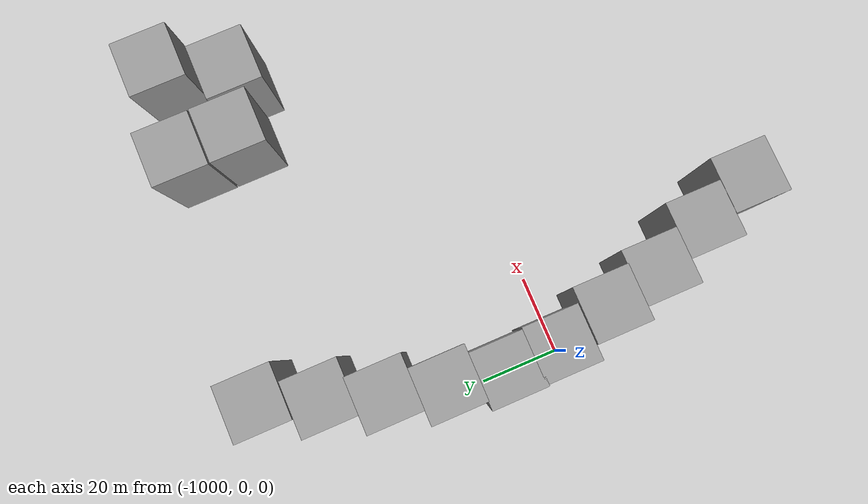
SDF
<sdf version="1.7">
 <world name="usv_world">
  <model name="box_obstacle_clone_4_clone_12_clone_1">
   <link name="link">
    <inertial>
     <mass>1</mass>
     <inertia>
      <ixx>0.166667</ixx>
      <ixy>0</ixy>
      <ixz>0</ixz>
      <iyy>0.166667</iyy>
      <iyz>0</iyz>
      <izz>0.166667</izz>
     </inertia>
    </inertial>
    <gravity>0</gravity>
    <visual name="visual">
     <geometry><box><size>15 15 30</size></box></geometry>
     <material>
      <script><name>Gazebo/Grey</name><uri>file://media/materials/scripts/gazebo.material</uri></script>
      <shader type="pixel"><normal_map>__default__</normal_map></shader>
      <ambient>0.3 0.3 0.3 1</ambient>
      <diffuse>0.7 0.7 0.7 1</diffuse>
      <specular>0.01 0.01 0.01 1</specular>
      <emissive>0 0 0 1</emissive>
     </material>
    </visual>
    <collision name="collision">
     <geometry><box><size>15 15 30</size></box></geometry>
     <surface>
      <friction>
       <ode><mu>1</mu><mu2>1</mu2><fdir1>0 0 0</fdir1><slip1>0</slip1><slip2>0</slip2></ode>
       <torsional>
        <coefficient>1</coefficient>
        <patch_radius>0</patch_radius>
        <surface_radius>0</surface_radius>
        <use_patch_radius>1</use_patch_radius>
        <ode><slip>0</slip></ode>
       </torsional>
      </friction>
      <bounce><restitution_coefficient>0</restitution_coefficient><threshold>1e+06</threshold></bounce>
      <contact>
       <collide_without_contact>0</collide_without_contact>
       <collide_without_contact_bitmask>1</collide_without_contact_bitmask>
       <collide_bitmask>1</collide_bitmask>
       <ode>
        <soft_cfm>0</soft_cfm>
        <soft_erp>0.2</soft_erp>
        <kp>1e+13</kp>
        <kd>1</kd>
        <max_vel>0.01</max_vel>
        <min_depth>0</min_depth>
       </ode>
       <bullet>
        <split_impulse>1</split_impulse>
        <split_impulse_penetration_threshold>-0.01</split_impulse_penetration_threshold>
        <soft_cfm>0</soft_cfm>
        <soft_erp>0.2</soft_erp>
        <kp>1e+13</kp>
        <kd>1</kd>
       </bullet>
      </contact>
     </surface>
    </collision>
   </link>
   <static>0</static>
   <pose>-978.987 -60.6566 0.5 0 -0 0</pose>
  </model>
  <model name="box_obstacle_clone_4_clone_12_clone_2">
   <link name="link">
    <inertial>
     <mass>1</mass>
     <inertia>
      <ixx>0.166667</ixx>
      <ixy>0</ixy>
      <ixz>0</ixz>
      <iyy>0.166667</iyy>
      <iyz>0</iyz>
      <izz>0.166667</izz>
     </inertia>
    </inertial>
    <gravity>0</gravity>
    <visual name="visual">
     <geometry><box><size>15 15 30</size></box></geometry>
     <material>
      <script><name>Gazebo/Grey</name><uri>file://media/materials/scripts/gazebo.material</uri></script>
      <shader type="pixel"><normal_map>__default__</normal_map></shader>
      <ambient>0.3 0.3 0.3 1</ambient>
      <diffuse>0.7 0.7 0.7 1</diffuse>
      <specular>0.01 0.01 0.01 1</specular>
      <emissive>0 0 0 1</emissive>
     </material>
    </visual>
    <collision name="collision">
     <geometry><box><size>15 15 30</size></box></geometry>
     <surface>
      <friction>
       <ode><mu>1</mu><mu2>1</mu2><fdir1>0 0 0</fdir1><slip1>0</slip1><slip2>0</slip2></ode>
       <torsional>
        <coefficient>1</coefficient>
        <patch_radius>0</patch_radius>
        <surface_radius>0</surface_radius>
        <use_patch_radius>1</use_patch_radius>
        <ode><slip>0</slip></ode>
       </torsional>
      </friction>
      <bounce><restitution_coefficient>0</restitution_coefficient><threshold>1e+06</threshold></bounce>
      <contact>
       <collide_without_contact>0</collide_without_contact>
       <collide_without_contact_bitmask>1</collide_without_contact_bitmask>
       <collide_bitmask>1</collide_bitmask>
       <ode>
        <soft_cfm>0</soft_cfm>
        <soft_erp>0.2</soft_erp>
        <kp>1e+13</kp>
        <kd>1</kd>
        <max_vel>0.01</max_vel>
        <min_depth>0</min_depth>
       </ode>
       <bullet>
        <split_impulse>1</split_impulse>
        <split_impulse_penetration_threshold>-0.01</split_impulse_penetration_threshold>
        <soft_cfm>0</soft_cfm>
        <soft_erp>0.2</soft_erp>
        <kp>1e+13</kp>
        <kd>1</kd>
       </bullet>
      </contact>
     </surface>
    </collision>
   </link>
   <static>0</static>
   <pose>-984.785 -45.6081 0.5 0 -0 0</pose>
  </model>
  <model name="box_obstacle_clone_4_clone_12_clone_3">
   <link name="link">
    <inertial>
     <mass>1</mass>
     <inertia>
      <ixx>0.166667</ixx>
      <ixy>0</ixy>
      <ixz>0</ixz>
      <iyy>0.166667</iyy>
      <iyz>0</iyz>
      <izz>0.166667</izz>
     </inertia>
    </inertial>
    <gravity>0</gravity>
    <visual name="visual">
     <geometry><box><size>15 15 30</size></box></geometry>
     <material>
      <script><name>Gazebo/Grey</name><uri>file://media/materials/scripts/gazebo.material</uri></script>
      <shader type="pixel"><normal_map>__default__</normal_map></shader>
      <ambient>0.3 0.3 0.3 1</ambient>
      <diffuse>0.7 0.7 0.7 1</diffuse>
      <specular>0.01 0.01 0.01 1</specular>
      <emissive>0 0 0 1</emissive>
     </material>
    </visual>
    <collision name="collision">
     <geometry><box><size>15 15 30</size></box></geometry>
     <surface>
      <friction>
       <ode><mu>1</mu><mu2>1</mu2><fdir1>0 0 0</fdir1><slip1>0</slip1><slip2>0</slip2></ode>
       <torsional>
        <coefficient>1</coefficient>
        <patch_radius>0</patch_radius>
        <surface_radius>0</surface_radius>
        <use_patch_radius>1</use_patch_radius>
        <ode><slip>0</slip></ode>
       </torsional>
      </friction>
      <bounce><restitution_coefficient>0</restitution_coefficient><threshold>1e+06</threshold></bounce>
      <contact>
       <collide_without_contact>0</collide_without_contact>
       <collide_without_contact_bitmask>1</collide_without_contact_bitmask>
       <collide_bitmask>1</collide_bitmask>
       <ode>
        <soft_cfm>0</soft_cfm>
        <soft_erp>0.2</soft_erp>
        <kp>1e+13</kp>
        <kd>1</kd>
        <max_vel>0.01</max_vel>
        <min_depth>0</min_depth>
       </ode>
       <bullet>
        <split_impulse>1</split_impulse>
        <split_impulse_penetration_threshold>-0.01</split_impulse_penetration_threshold>
        <soft_cfm>0</soft_cfm>
        <soft_erp>0.2</soft_erp>
        <kp>1e+13</kp>
        <kd>1</kd>
       </bullet>
      </contact>
     </surface>
    </collision>
   </link>
   <static>0</static>
   <pose>-991.108 -30.6296 0.5 0 -0 0</pose>
  </model>
  <model name="box_obstacle_clone_4_clone_12_clone_4">
   <link name="link">
    <inertial>
     <mass>1</mass>
     <inertia>
      <ixx>0.166667</ixx>
      <ixy>0</ixy>
      <ixz>0</ixz>
      <iyy>0.166667</iyy>
      <iyz>0</iyz>
      <izz>0.166667</izz>
     </inertia>
    </inertial>
    <gravity>0</gravity>
    <visual name="visual">
     <geometry><box><size>15 15 30</size></box></geometry>
     <material>
      <script><name>Gazebo/Grey</name><uri>file://media/materials/scripts/gazebo.material</uri></script>
      <shader type="pixel"><normal_map>__default__</normal_map></shader>
      <ambient>0.3 0.3 0.3 1</ambient>
      <diffuse>0.7 0.7 0.7 1</diffuse>
      <specular>0.01 0.01 0.01 1</specular>
      <emissive>0 0 0 1</emissive>
     </material>
    </visual>
    <collision name="collision">
     <geometry><box><size>15 15 30</size></box></geometry>
     <surface>
      <friction>
       <ode><mu>1</mu><mu2>1</mu2><fdir1>0 0 0</fdir1><slip1>0</slip1><slip2>0</slip2></ode>
       <torsional>
        <coefficient>1</coefficient>
        <patch_radius>0</patch_radius>
        <surface_radius>0</surface_radius>
        <use_patch_radius>1</use_patch_radius>
        <ode><slip>0</slip></ode>
       </torsional>
      </friction>
      <bounce><restitution_coefficient>0</restitution_coefficient><threshold>1e+06</threshold></bounce>
      <contact>
       <collide_without_contact>0</collide_without_contact>
       <collide_without_contact_bitmask>1</collide_without_contact_bitmask>
       <collide_bitmask>1</collide_bitmask>
       <ode>
        <soft_cfm>0</soft_cfm>
        <soft_erp>0.2</soft_erp>
        <kp>1e+13</kp>
        <kd>1</kd>
        <max_vel>0.01</max_vel>
        <min_depth>0</min_depth>
       </ode>
       <bullet>
        <split_impulse>1</split_impulse>
        <split_impulse_penetration_threshold>-0.01</split_impulse_penetration_threshold>
        <soft_cfm>0</soft_cfm>
        <soft_erp>0.2</soft_erp>
        <kp>1e+13</kp>
        <kd>1</kd>
       </bullet>
      </contact>
     </surface>
    </collision>
   </link>
   <static>0</static>
   <pose>-994.606 -15.962 0.5 0 -0 0</pose>
  </model>
  <model name="box_obstacle_clone_4_clone_12_clone_5">
   <link name="link">
    <inertial>
     <mass>1</mass>
     <inertia>
      <ixx>0.166667</ixx>
      <ixy>0</ixy>
      <ixz>0</ixz>
      <iyy>0.166667</iyy>
      <iyz>0</iyz>
      <izz>0.166667</izz>
     </inertia>
    </inertial>
    <gravity>0</gravity>
    <visual name="visual">
     <geometry><box><size>15 15 30</size></box></geometry>
     <material>
      <script><name>Gazebo/Grey</name><uri>file://media/materials/scripts/gazebo.material</uri></script>
      <shader type="pixel"><normal_map>__default__</normal_map></shader>
      <ambient>0.3 0.3 0.3 1</ambient>
      <diffuse>0.7 0.7 0.7 1</diffuse>
      <specular>0.01 0.01 0.01 1</specular>
      <emissive>0 0 0 1</emissive>
     </material>
    </visual>
    <collision name="collision">
     <geometry><box><size>15 15 30</size></box></geometry>
     <surface>
      <friction>
       <ode><mu>1</mu><mu2>1</mu2><fdir1>0 0 0</fdir1><slip1>0</slip1><slip2>0</slip2></ode>
       <torsional>
        <coefficient>1</coefficient>
        <patch_radius>0</patch_radius>
        <surface_radius>0</surface_radius>
        <use_patch_radius>1</use_patch_radius>
        <ode><slip>0</slip></ode>
       </torsional>
      </friction>
      <bounce><restitution_coefficient>0</restitution_coefficient><threshold>1e+06</threshold></bounce>
      <contact>
       <collide_without_contact>0</collide_without_contact>
       <collide_without_contact_bitmask>1</collide_without_contact_bitmask>
       <collide_bitmask>1</collide_bitmask>
       <ode>
        <soft_cfm>0</soft_cfm>
        <soft_erp>0.2</soft_erp>
        <kp>1e+13</kp>
        <kd>1</kd>
        <max_vel>0.01</max_vel>
        <min_depth>0</min_depth>
       </ode>
       <bullet>
        <split_impulse>1</split_impulse>
        <split_impulse_penetration_threshold>-0.01</split_impulse_penetration_threshold>
        <soft_cfm>0</soft_cfm>
        <soft_erp>0.2</soft_erp>
        <kp>1e+13</kp>
        <kd>1</kd>
       </bullet>
      </contact>
     </surface>
    </collision>
   </link>
   <static>0</static>
   <pose>-998.563 -0.663656 0.5 0 -0 0</pose>
  </model>
  <model name="box_obstacle_clone_4_clone_12_clone_6">
   <link name="link">
    <inertial>
     <mass>1</mass>
     <inertia>
      <ixx>0.166667</ixx>
      <ixy>0</ixy>
      <ixz>0</ixz>
      <iyy>0.166667</iyy>
      <iyz>0</iyz>
      <izz>0.166667</izz>
     </inertia>
    </inertial>
    <gravity>0</gravity>
    <visual name="visual">
     <geometry><box><size>15 15 30</size></box></geometry>
     <material>
      <script><name>Gazebo/Grey</name><uri>file://media/materials/scripts/gazebo.material</uri></script>
      <shader type="pixel"><normal_map>__default__</normal_map></shader>
      <ambient>0.3 0.3 0.3 1</ambient>
      <diffuse>0.7 0.7 0.7 1</diffuse>
      <specular>0.01 0.01 0.01 1</specular>
      <emissive>0 0 0 1</emissive>
     </material>
    </visual>
    <collision name="collision">
     <geometry><box><size>15 15 30</size></box></geometry>
     <surface>
      <friction>
       <ode><mu>1</mu><mu2>1</mu2><fdir1>0 0 0</fdir1><slip1>0</slip1><slip2>0</slip2></ode>
       <torsional>
        <coefficient>1</coefficient>
        <patch_radius>0</patch_radius>
        <surface_radius>0</surface_radius>
        <use_patch_radius>1</use_patch_radius>
        <ode><slip>0</slip></ode>
       </torsional>
      </friction>
      <bounce><restitution_coefficient>0</restitution_coefficient><threshold>1e+06</threshold></bounce>
      <contact>
       <collide_without_contact>0</collide_without_contact>
       <collide_without_contact_bitmask>1</collide_without_contact_bitmask>
       <collide_bitmask>1</collide_bitmask>
       <ode>
        <soft_cfm>0</soft_cfm>
        <soft_erp>0.2</soft_erp>
        <kp>1e+13</kp>
        <kd>1</kd>
        <max_vel>0.01</max_vel>
        <min_depth>0</min_depth>
       </ode>
       <bullet>
        <split_impulse>1</split_impulse>
        <split_impulse_penetration_threshold>-0.01</split_impulse_penetration_threshold>
        <soft_cfm>0</soft_cfm>
        <soft_erp>0.2</soft_erp>
        <kp>1e+13</kp>
        <kd>1</kd>
       </bullet>
      </contact>
     </surface>
    </collision>
   </link>
   <static>0</static>
   <pose>-998.995 13.7778 0.5 0 -0 0</pose>
  </model>
  <model name="box_obstacle_clone_4_clone_12_clone_7">
   <link name="link">
    <inertial>
     <mass>1</mass>
     <inertia>
      <ixx>0.166667</ixx>
      <ixy>0</ixy>
      <ixz>0</ixz>
      <iyy>0.166667</iyy>
      <iyz>0</iyz>
      <izz>0.166667</izz>
     </inertia>
    </inertial>
    <gravity>0</gravity>
    <visual name="visual">
     <geometry><box><size>15 15 30</size></box></geometry>
     <material>
      <script><name>Gazebo/Grey</name><uri>file://media/materials/scripts/gazebo.material</uri></script>
      <shader type="pixel"><normal_map>__default__</normal_map></shader>
      <ambient>0.3 0.3 0.3 1</ambient>
      <diffuse>0.7 0.7 0.7 1</diffuse>
      <specular>0.01 0.01 0.01 1</specular>
      <emissive>0 0 0 1</emissive>
     </material>
    </visual>
    <collision name="collision">
     <geometry><box><size>15 15 30</size></box></geometry>
     <surface>
      <friction>
       <ode><mu>1</mu><mu2>1</mu2><fdir1>0 0 0</fdir1><slip1>0</slip1><slip2>0</slip2></ode>
       <torsional>
        <coefficient>1</coefficient>
        <patch_radius>0</patch_radius>
        <surface_radius>0</surface_radius>
        <use_patch_radius>1</use_patch_radius>
        <ode><slip>0</slip></ode>
       </torsional>
      </friction>
      <bounce><restitution_coefficient>0</restitution_coefficient><threshold>1e+06</threshold></bounce>
      <contact>
       <collide_without_contact>0</collide_without_contact>
       <collide_without_contact_bitmask>1</collide_without_contact_bitmask>
       <collide_bitmask>1</collide_bitmask>
       <ode>
        <soft_cfm>0</soft_cfm>
        <soft_erp>0.2</soft_erp>
        <kp>1e+13</kp>
        <kd>1</kd>
        <max_vel>0.01</max_vel>
        <min_depth>0</min_depth>
       </ode>
       <bullet>
        <split_impulse>1</split_impulse>
        <split_impulse_penetration_threshold>-0.01</split_impulse_penetration_threshold>
        <soft_cfm>0</soft_cfm>
        <soft_erp>0.2</soft_erp>
        <kp>1e+13</kp>
        <kd>1</kd>
       </bullet>
      </contact>
     </surface>
    </collision>
   </link>
   <static>0</static>
   <pose>-996.584 28.5583 0.5 0 -0 0</pose>
  </model>
  <model name="box_obstacle_clone_4_clone_12_clone_8">
   <link name="link">
    <inertial>
     <mass>1</mass>
     <inertia>
      <ixx>0.166667</ixx>
      <ixy>0</ixy>
      <ixz>0</ixz>
      <iyy>0.166667</iyy>
      <iyz>0</iyz>
      <izz>0.166667</izz>
     </inertia>
    </inertial>
    <gravity>0</gravity>
    <visual name="visual">
     <geometry><box><size>15 15 30</size></box></geometry>
     <material>
      <script><name>Gazebo/Grey</name><uri>file://media/materials/scripts/gazebo.material</uri></script>
      <shader type="pixel"><normal_map>__default__</normal_map></shader>
      <ambient>0.3 0.3 0.3 1</ambient>
      <diffuse>0.7 0.7 0.7 1</diffuse>
      <specular>0.01 0.01 0.01 1</specular>
      <emissive>0 0 0 1</emissive>
     </material>
    </visual>
    <collision name="collision">
     <geometry><box><size>15 15 30</size></box></geometry>
     <surface>
      <friction>
       <ode><mu>1</mu><mu2>1</mu2><fdir1>0 0 0</fdir1><slip1>0</slip1><slip2>0</slip2></ode>
       <torsional>
        <coefficient>1</coefficient>
        <patch_radius>0</patch_radius>
        <surface_radius>0</surface_radius>
        <use_patch_radius>1</use_patch_radius>
        <ode><slip>0</slip></ode>
       </torsional>
      </friction>
      <bounce><restitution_coefficient>0</restitution_coefficient><threshold>1e+06</threshold></bounce>
      <contact>
       <collide_without_contact>0</collide_without_contact>
       <collide_without_contact_bitmask>1</collide_without_contact_bitmask>
       <collide_bitmask>1</collide_bitmask>
       <ode>
        <soft_cfm>0</soft_cfm>
        <soft_erp>0.2</soft_erp>
        <kp>1e+13</kp>
        <kd>1</kd>
        <max_vel>0.01</max_vel>
        <min_depth>0</min_depth>
       </ode>
       <bullet>
        <split_impulse>1</split_impulse>
        <split_impulse_penetration_threshold>-0.01</split_impulse_penetration_threshold>
        <soft_cfm>0</soft_cfm>
        <soft_erp>0.2</soft_erp>
        <kp>1e+13</kp>
        <kd>1</kd>
       </bullet>
      </contact>
     </surface>
    </collision>
   </link>
   <static>0</static>
   <pose>-992.44 43.4913 0.5 0 -0 0</pose>
  </model>
  <model name="box_obstacle_clone_4_clone_12_clone_9">
   <link name="link">
    <inertial>
     <mass>1</mass>
     <inertia>
      <ixx>0.166667</ixx>
      <ixy>0</ixy>
      <ixz>0</ixz>
      <iyy>0.166667</iyy>
      <iyz>0</iyz>
      <izz>0.166667</izz>
     </inertia>
    </inertial>
    <gravity>0</gravity>
    <visual name="visual">
     <geometry><box><size>15 15 30</size></box></geometry>
     <material>
      <script><name>Gazebo/Grey</name><uri>file://media/materials/scripts/gazebo.material</uri></script>
      <shader type="pixel"><normal_map>__default__</normal_map></shader>
      <ambient>0.3 0.3 0.3 1</ambient>
      <diffuse>0.7 0.7 0.7 1</diffuse>
      <specular>0.01 0.01 0.01 1</specular>
      <emissive>0 0 0 1</emissive>
     </material>
    </visual>
    <collision name="collision">
     <geometry><box><size>15 15 30</size></box></geometry>
     <surface>
      <friction>
       <ode><mu>1</mu><mu2>1</mu2><fdir1>0 0 0</fdir1><slip1>0</slip1><slip2>0</slip2></ode>
       <torsional>
        <coefficient>1</coefficient>
        <patch_radius>0</patch_radius>
        <surface_radius>0</surface_radius>
        <use_patch_radius>1</use_patch_radius>
        <ode><slip>0</slip></ode>
       </torsional>
      </friction>
      <bounce><restitution_coefficient>0</restitution_coefficient><threshold>1e+06</threshold></bounce>
      <contact>
       <collide_without_contact>0</collide_without_contact>
       <collide_without_contact_bitmask>1</collide_without_contact_bitmask>
       <collide_bitmask>1</collide_bitmask>
       <ode>
        <soft_cfm>0</soft_cfm>
        <soft_erp>0.2</soft_erp>
        <kp>1e+13</kp>
        <kd>1</kd>
        <max_vel>0.01</max_vel>
        <min_depth>0</min_depth>
       </ode>
       <bullet>
        <split_impulse>1</split_impulse>
        <split_impulse_penetration_threshold>-0.01</split_impulse_penetration_threshold>
        <soft_cfm>0</soft_cfm>
        <soft_erp>0.2</soft_erp>
        <kp>1e+13</kp>
        <kd>1</kd>
       </bullet>
      </contact>
     </surface>
    </collision>
   </link>
   <static>0</static>
   <pose>-987.231 58.0992 0.5 0 -0 0</pose>
  </model>
  <model name="box_obstacle_clone_4_clone_12_clone_10">
   <link name="link">
    <inertial>
     <mass>1</mass>
     <inertia>
      <ixx>0.166667</ixx>
      <ixy>0</ixy>
      <ixz>0</ixz>
      <iyy>0.166667</iyy>
      <iyz>0</iyz>
      <izz>0.166667</izz>
     </inertia>
    </inertial>
    <gravity>0</gravity>
    <visual name="visual">
     <geometry><box><size>15 15 30</size></box></geometry>
     <material>
      <script><name>Gazebo/Grey</name><uri>file://media/materials/scripts/gazebo.material</uri></script>
      <shader type="pixel"><normal_map>__default__</normal_map></shader>
      <ambient>0.3 0.3 0.3 1</ambient>
      <diffuse>0.7 0.7 0.7 1</diffuse>
      <specular>0.01 0.01 0.01 1</specular>
      <emissive>0 0 0 1</emissive>
     </material>
    </visual>
    <collision name="collision">
     <geometry><box><size>15 15 30</size></box></geometry>
     <surface>
      <friction>
       <ode><mu>1</mu><mu2>1</mu2><fdir1>0 0 0</fdir1><slip1>0</slip1><slip2>0</slip2></ode>
       <torsional>
        <coefficient>1</coefficient>
        <patch_radius>0</patch_radius>
        <surface_radius>0</surface_radius>
        <use_patch_radius>1</use_patch_radius>
        <ode><slip>0</slip></ode>
       </torsional>
      </friction>
      <bounce><restitution_coefficient>0</restitution_coefficient><threshold>1e+06</threshold></bounce>
      <contact>
       <collide_without_contact>0</collide_without_contact>
       <collide_without_contact_bitmask>1</collide_without_contact_bitmask>
       <collide_bitmask>1</collide_bitmask>
       <ode>
        <soft_cfm>0</soft_cfm>
        <soft_erp>0.2</soft_erp>
        <kp>1e+13</kp>
        <kd>1</kd>
        <max_vel>0.01</max_vel>
        <min_depth>0</min_depth>
       </ode>
       <bullet>
        <split_impulse>1</split_impulse>
        <split_impulse_penetration_threshold>-0.01</split_impulse_penetration_threshold>
        <soft_cfm>0</soft_cfm>
        <soft_erp>0.2</soft_erp>
        <kp>1e+13</kp>
        <kd>1</kd>
       </bullet>
      </contact>
     </surface>
    </collision>
   </link>
   <static>0</static>
   <pose>-981.905 73.3266 0.5 0 -0 0</pose>
  </model>
  <model name="box_obstacle_clone_4_clone_12_clone_11">
   <link name="link">
    <inertial>
     <mass>1</mass>
     <inertia>
      <ixx>0.166667</ixx>
      <ixy>0</ixy>
      <ixz>0</ixz>
      <iyy>0.166667</iyy>
      <iyz>0</iyz>
      <izz>0.166667</izz>
     </inertia>
    </inertial>
    <gravity>0</gravity>
    <visual name="visual">
     <geometry><box><size>15 15 30</size></box></geometry>
     <material>
      <script><name>Gazebo/Grey</name><uri>file://media/materials/scripts/gazebo.material</uri></script>
      <shader type="pixel"><normal_map>__default__</normal_map></shader>
      <ambient>0.3 0.3 0.3 1</ambient>
      <diffuse>0.7 0.7 0.7 1</diffuse>
      <specular>0.01 0.01 0.01 1</specular>
      <emissive>0 0 0 1</emissive>
     </material>
    </visual>
    <collision name="collision">
     <geometry><box><size>15 15 30</size></box></geometry>
     <surface>
      <friction>
       <ode><mu>1</mu><mu2>1</mu2><fdir1>0 0 0</fdir1><slip1>0</slip1><slip2>0</slip2></ode>
       <torsional>
        <coefficient>1</coefficient>
        <patch_radius>0</patch_radius>
        <surface_radius>0</surface_radius>
        <use_patch_radius>1</use_patch_radius>
        <ode><slip>0</slip></ode>
       </torsional>
      </friction>
      <bounce><restitution_coefficient>0</restitution_coefficient><threshold>1e+06</threshold></bounce>
      <contact>
       <collide_without_contact>0</collide_without_contact>
       <collide_without_contact_bitmask>1</collide_without_contact_bitmask>
       <collide_bitmask>1</collide_bitmask>
       <ode>
        <soft_cfm>0</soft_cfm>
        <soft_erp>0.2</soft_erp>
        <kp>1e+13</kp>
        <kd>1</kd>
        <max_vel>0.01</max_vel>
        <min_depth>0</min_depth>
       </ode>
       <bullet>
        <split_impulse>1</split_impulse>
        <split_impulse_penetration_threshold>-0.01</split_impulse_penetration_threshold>
        <soft_cfm>0</soft_cfm>
        <soft_erp>0.2</soft_erp>
        <kp>1e+13</kp>
        <kd>1</kd>
       </bullet>
      </contact>
     </surface>
    </collision>
   </link>
   <static>0</static>
   <pose>-916.036 69.2849 0.5 0 -0 0</pose>
  </model>
  <model name="box_obstacle_clone_4_clone_12_clone_12">
   <link name="link">
    <inertial>
     <mass>1</mass>
     <inertia>
      <ixx>0.166667</ixx>
      <ixy>0</ixy>
      <ixz>0</ixz>
      <iyy>0.166667</iyy>
      <iyz>0</iyz>
      <izz>0.166667</izz>
     </inertia>
    </inertial>
    <gravity>0</gravity>
    <visual name="visual">
     <geometry><box><size>15 15 30</size></box></geometry>
     <material>
      <script><name>Gazebo/Grey</name><uri>file://media/materials/scripts/gazebo.material</uri></script>
      <shader type="pixel"><normal_map>__default__</normal_map></shader>
      <ambient>0.3 0.3 0.3 1</ambient>
      <diffuse>0.7 0.7 0.7 1</diffuse>
      <specular>0.01 0.01 0.01 1</specular>
      <emissive>0 0 0 1</emissive>
     </material>
    </visual>
    <collision name="collision">
     <geometry><box><size>15 15 30</size></box></geometry>
     <surface>
      <friction>
       <ode><mu>1</mu><mu2>1</mu2><fdir1>0 0 0</fdir1><slip1>0</slip1><slip2>0</slip2></ode>
       <torsional>
        <coefficient>1</coefficient>
        <patch_radius>0</patch_radius>
        <surface_radius>0</surface_radius>
        <use_patch_radius>1</use_patch_radius>
        <ode><slip>0</slip></ode>
       </torsional>
      </friction>
      <bounce><restitution_coefficient>0</restitution_coefficient><threshold>1e+06</threshold></bounce>
      <contact>
       <collide_without_contact>0</collide_without_contact>
       <collide_without_contact_bitmask>1</collide_without_contact_bitmask>
       <collide_bitmask>1</collide_bitmask>
       <ode>
        <soft_cfm>0</soft_cfm>
        <soft_erp>0.2</soft_erp>
        <kp>1e+13</kp>
        <kd>1</kd>
        <max_vel>0.01</max_vel>
        <min_depth>0</min_depth>
       </ode>
       <bullet>
        <split_impulse>1</split_impulse>
        <split_impulse_penetration_threshold>-0.01</split_impulse_penetration_threshold>
        <soft_cfm>0</soft_cfm>
        <soft_erp>0.2</soft_erp>
        <kp>1e+13</kp>
        <kd>1</kd>
       </bullet>
      </contact>
     </surface>
    </collision>
   </link>
   <static>0</static>
   <pose>-915.926 53.8983 0.5 0 -0 0</pose>
  </model>
  <model name="box_obstacle_clone_4_clone_12_clone_13">
   <link name="link">
    <inertial>
     <mass>1</mass>
     <inertia>
      <ixx>0.166667</ixx>
      <ixy>0</ixy>
      <ixz>0</ixz>
      <iyy>0.166667</iyy>
      <iyz>0</iyz>
      <izz>0.166667</izz>
     </inertia>
    </inertial>
    <gravity>0</gravity>
    <visual name="visual">
     <geometry><box><size>15 15 30</size></box></geometry>
     <material>
      <script><name>Gazebo/Grey</name><uri>file://media/materials/scripts/gazebo.material</uri></script>
      <shader type="pixel"><normal_map>__default__</normal_map></shader>
      <ambient>0.3 0.3 0.3 1</ambient>
      <diffuse>0.7 0.7 0.7 1</diffuse>
      <specular>0.01 0.01 0.01 1</specular>
      <emissive>0 0 0 1</emissive>
     </material>
    </visual>
    <collision name="collision">
     <geometry><box><size>15 15 30</size></box></geometry>
     <surface>
      <friction>
       <ode><mu>1</mu><mu2>1</mu2><fdir1>0 0 0</fdir1><slip1>0</slip1><slip2>0</slip2></ode>
       <torsional>
        <coefficient>1</coefficient>
        <patch_radius>0</patch_radius>
        <surface_radius>0</surface_radius>
        <use_patch_radius>1</use_patch_radius>
        <ode><slip>0</slip></ode>
       </torsional>
      </friction>
      <bounce><restitution_coefficient>0</restitution_coefficient><threshold>1e+06</threshold></bounce>
      <contact>
       <collide_without_contact>0</collide_without_contact>
       <collide_without_contact_bitmask>1</collide_without_contact_bitmask>
       <collide_bitmask>1</collide_bitmask>
       <ode>
        <soft_cfm>0</soft_cfm>
        <soft_erp>0.2</soft_erp>
        <kp>1e+13</kp>
        <kd>1</kd>
        <max_vel>0.01</max_vel>
        <min_depth>0</min_depth>
       </ode>
       <bullet>
        <split_impulse>1</split_impulse>
        <split_impulse_penetration_threshold>-0.01</split_impulse_penetration_threshold>
        <soft_cfm>0</soft_cfm>
        <soft_erp>0.2</soft_erp>
        <kp>1e+13</kp>
        <kd>1</kd>
       </bullet>
      </contact>
     </surface>
    </collision>
   </link>
   <static>0</static>
   <pose>-900.361 48.7646 0.5 0 -0 0</pose>
  </model>
  <model name="box_obstacle_clone_4_clone_12_clone_14">
   <link name="link">
    <inertial>
     <mass>1</mass>
     <inertia>
      <ixx>0.166667</ixx>
      <ixy>0</ixy>
      <ixz>0</ixz>
      <iyy>0.166667</iyy>
      <iyz>0</iyz>
      <izz>0.166667</izz>
     </inertia>
    </inertial>
    <gravity>0</gravity>
    <visual name="visual">
     <geometry><box><size>15 15 30</size></box></geometry>
     <material>
      <script><name>Gazebo/Grey</name><uri>file://media/materials/scripts/gazebo.material</uri></script>
      <shader type="pixel"><normal_map>__default__</normal_map></shader>
      <ambient>0.3 0.3 0.3 1</ambient>
      <diffuse>0.7 0.7 0.7 1</diffuse>
      <specular>0.01 0.01 0.01 1</specular>
      <emissive>0 0 0 1</emissive>
     </material>
    </visual>
    <collision name="collision">
     <geometry><box><size>15 15 30</size></box></geometry>
     <surface>
      <friction>
       <ode><mu>1</mu><mu2>1</mu2><fdir1>0 0 0</fdir1><slip1>0</slip1><slip2>0</slip2></ode>
       <torsional>
        <coefficient>1</coefficient>
        <patch_radius>0</patch_radius>
        <surface_radius>0</surface_radius>
        <use_patch_radius>1</use_patch_radius>
        <ode><slip>0</slip></ode>
       </torsional>
      </friction>
      <bounce><restitution_coefficient>0</restitution_coefficient><threshold>1e+06</threshold></bounce>
      <contact>
       <collide_without_contact>0</collide_without_contact>
       <collide_without_contact_bitmask>1</collide_without_contact_bitmask>
       <collide_bitmask>1</collide_bitmask>
       <ode>
        <soft_cfm>0</soft_cfm>
        <soft_erp>0.2</soft_erp>
        <kp>1e+13</kp>
        <kd>1</kd>
        <max_vel>0.01</max_vel>
        <min_depth>0</min_depth>
       </ode>
       <bullet>
        <split_impulse>1</split_impulse>
        <split_impulse_penetration_threshold>-0.01</split_impulse_penetration_threshold>
        <soft_cfm>0</soft_cfm>
        <soft_erp>0.2</soft_erp>
        <kp>1e+13</kp>
        <kd>1</kd>
       </bullet>
      </contact>
     </surface>
    </collision>
   </link>
   <static>0</static>
   <pose>-892.171 66.2847 0.5 0 -0 0</pose>
  </model>
 </world>
</sdf>
